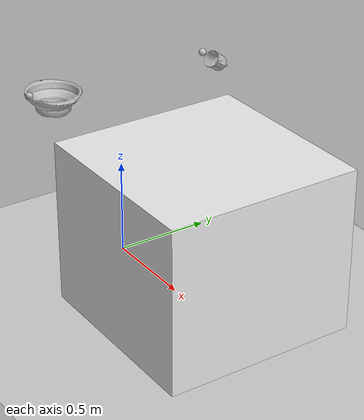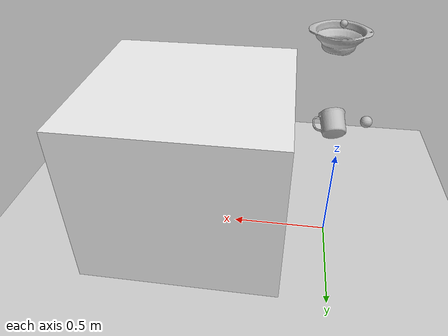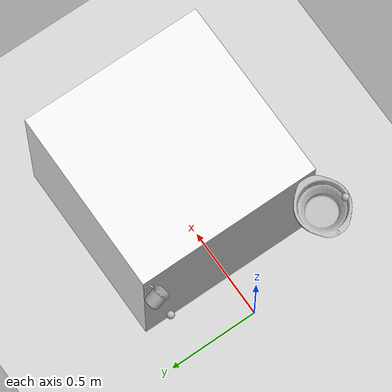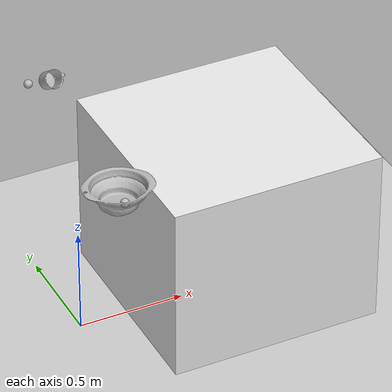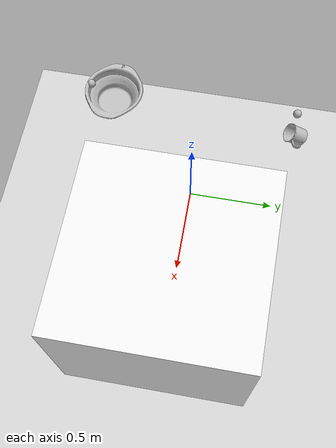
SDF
<?xml version='1.0'?>
<sdf version="1.6">
    <world name="big_bowl_serving_spoon_p">

        <include>
            <uri>model://sun</uri>
        </include>

        <include>
            <uri>model://ground_plane</uri>
        </include>

        <include>
            <uri>model://b_red_mug</uri>
            <pose>0.112572 0.508131 0.984633 1.382835 0.015399 0.080779</pose>
        </include>

        <include>
            <uri>model://b_big_bowl</uri>
            <pose>0.024164 -0.383989 0.959287 -0.017186 -0.000884 -0.101566</pose>
        </include>

        <include>
            <uri>model://b_kitchen_isle</uri>
            <pose>0.729232 0 0 0 0 0</pose>
        </include>

        <!-- Left Gripper -->
        <include>
            <uri>model://gripper</uri>
            <name>left_ee</name>
            <pose>0 0.5 1 0 0 0</pose>

            <plugin name="l_position_controller" filename="libposition_controller_plugin.so">
              <linkName>link</linkName>
              <referenceFrameName>base_link</referenceFrameName>
              <targetFrameName>l_gripper_tool_frame</targetFrameName>
            </plugin>

            <plugin name="l_grip" filename="libQGripPlugin.so">
              <parentLinkName>link</parentLinkName>
              <childLinkName>b_red_mug::link</childLinkName>
              <relativeTranslation>0.071897149086 -0.00266407802701 -0.0123504642397</relativeTranslation>
              <relativeRotationXYZW>-0.00352649204433 -0.347647994757 -0.93575501442 -0.0591045282781</relativeRotationXYZW>
            </plugin>
        </include>

        <!-- Right Gripper -->
        <include>
            <uri>model://gripper</uri>
            <name>right_ee</name>
            <pose>0 -0.5 1 1.547368 1.402341 1.343703</pose>

            <plugin name="r_position_controller" filename="libposition_controller_plugin.so">
              <linkName>link</linkName>
              <referenceFrameName>base_link</referenceFrameName>
              <targetFrameName>r_gripper_tool_frame</targetFrameName>
            </plugin>

            <plugin name="r_grip" filename="libQGripPlugin.so">
              <parentLinkName>link</parentLinkName>
              <childLinkName>b_big_bowl::link</childLinkName>
              <relativeTranslation>0.0698283538222 -0.101200096309 -0.00832558982074</relativeTranslation>
              <relativeRotationXYZW>0.0882896855474 -0.714526772499 0.152498945594 0.677053391933</relativeRotationXYZW>
            </plugin>

        </include>

        <plugin name="feature_visualization_plugin" filename="libgiskard_visualization_plugin.so"></plugin>

        <gui>
            <camera name='user_camera'>
                <pose>1.700789 1.175709 1.670612 0 0.375643 -2.675000</pose>
                <view_controller>orbit</view_controller>
            </camera>
        </gui>

    </world>
</sdf>

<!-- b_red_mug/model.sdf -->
<sdf version='1.6'>
	<model name='b_red_mug'>
		<static>false</static>
		<pose>0 0 0 0 0 0</pose>

		<link name='link'>
			<inertial>
			<mass>0.096</mass>
			<pose>-0.00011045 0.0017861 0.0028209 0 0 0</pose>
				<inertia>
					<ixx>1.66e-06</ixx>
					<ixy>0</ixy>
					<ixz>0</ixz>
					<iyy>1.357e-06</iyy>
					<iyz>0</iyz>
					<izz>7.1669e-07</izz>
				</inertia>
			</inertial>
			<collision name='collision'>
				<geometry>
					<mesh>
						<uri>model://b_red_mug/b_red_mug.dae</uri>
					</mesh>
				</geometry>
				<surface>
					<friction>
						<ode>
							<mu>0.2</mu>
							<mu2>0.2</mu2>
						</ode>
					</friction>
				</surface>
			</collision>
			<visual name='visual'>
				<geometry>
					<mesh>
						<uri>model://b_red_mug/b_red_mug.dae</uri>
					</mesh>
				</geometry>
			</visual>
		</link>
	</model>
</sdf>

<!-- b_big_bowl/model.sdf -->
<sdf version='1.6'>
	<model name='b_big_bowl'>
		<static>false</static>
		<pose>0 0 0 0 0 0</pose>

		<link name='link'>
			<inertial>
			<mass>0.35</mass>
			<pose>-0.0022966 -0.0039142 0.0041527 0 0 0</pose>
				<inertia>
					<ixx>0.0009479167</ixx>
					<iyy>0.0009479167</iyy>
					<izz>0.00175</izz>
				</inertia>
			</inertial>
			<collision name='collision'>
				<geometry>
					<mesh>
						<uri>model://b_big_bowl/b_big_bowl.dae</uri>
					</mesh>
				</geometry>
				<surface>
					<friction>
						<ode>
							<mu>0.2</mu>
							<mu2>0.2</mu2>
						</ode>
					</friction>
				</surface>
			</collision>
			<visual name='visual'>
				<geometry>
					<mesh>
						<uri>model://b_big_bowl/b_big_bowl.dae</uri>
					</mesh>
				</geometry>
			</visual>
		</link>
	</model>
</sdf>

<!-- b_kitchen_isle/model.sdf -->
<sdf version='1.6'>
    <model name='b_kitchen_isle'>
        <static>false</static>

        <pose>0 0 0 0 0 0</pose>

        <link name='link'>
            <pose>0 0 0.425 0 0 0</pose>

            <gravity>false</gravity>

           <collision name='collision'>
               <geometry>
                   <box>
                        <size>1.0 1.0 0.85</size>
                    </box>
               </geometry>
           </collision>

            <visual name='visual'>
                <geometry>
                   <box>
                        <size>1.0 1.0 0.85</size>
                    </box>
               </geometry>
               <material>
                    <script>
                        <name>Gazebo/White</name>
                        <uri>file://media/materials/scripts/gazebo.material</uri>
                    </script>
                </material>
            </visual>

        </link>
    </model>
</sdf>

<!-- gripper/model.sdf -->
<sdf version='1.6'>
    <model name='gripper'>
        <static>false</static>
        <allow_auto_disable>false</allow_auto_disable>

        <pose>0 0 0 0 0 0</pose>

        <link name='link'>
            <pose>0 0 0 0 0 0</pose>

            <gravity>false</gravity>

            <visual name='visual'>
                <geometry>
                    <sphere>
                        <radius>0.02</radius>
                    </sphere>
                </geometry>
            </visual>

        </link>
    </model>
</sdf>
